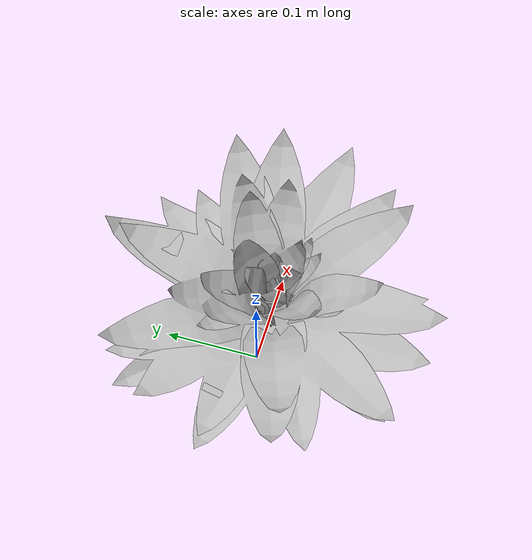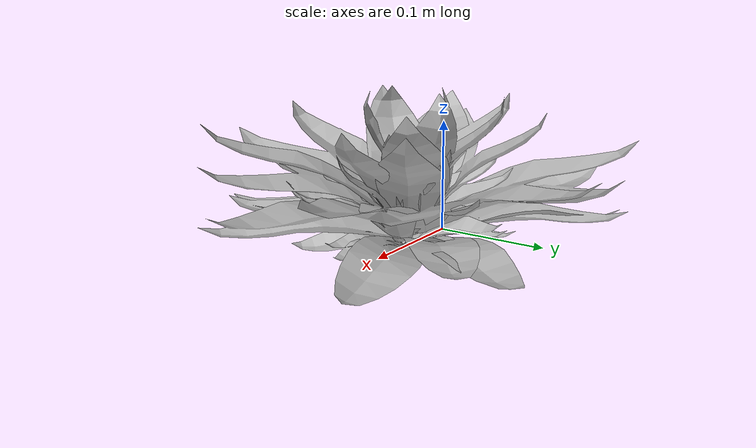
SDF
<?xml version="1.0" ?>
<sdf version="1.6">
  <model name="weed">
    <link name="link">
      <visual name="visual">
        <pose>0.05 0 0 0 0 -1</pose>
        <geometry>
          <mesh>
            <uri>model://weed/meshes/weed.dae</uri>
            <scale>0.2 0.2 0.14</scale>
          </mesh>
        </geometry>
        <material>
          <script>
            <uri>model://weed/materials/scripts/</uri>
            <uri>model://weed/materials/textures/</uri>
            <name>weed</name>
          </script>
        </material>
      </visual>
      <visual name="visual1">
        <pose>0.06 0 0 0 0 0</pose>
        <geometry>
          <mesh>
            <uri>model://weed/meshes/weed.dae</uri>
            <scale>0.1 0.1 0.1</scale>
          </mesh>
        </geometry>
        <material>
          <script>
            <uri>model://weed/materials/scripts/</uri>
            <uri>model://weed/materials/textures/</uri>
            <name>weed</name>
          </script>
        </material>
      </visual>
      <visual name="visual2">
        <pose>0.045 0 0 0 0 1</pose>
        <geometry>
          <mesh>
            <uri>model://weed/meshes/weed.dae</uri>
            <scale>0.2 0.2 0.14</scale>
          </mesh>
        </geometry>
        <material>
          <script>
            <uri>model://weed/materials/scripts/</uri>
            <uri>model://weed/materials/textures/</uri>
            <name>weed</name>
          </script>
        </material>
      </visual>
      <visual name="visual3">
        <pose>0.065 0 0 0 0 -2</pose>
        <geometry>
          <mesh>
            <uri>model://weed/meshes/weed.dae</uri>
            <scale>0.1 0.1 0.1</scale>
          </mesh>
        </geometry>
        <material>
          <script>
            <uri>model://weed/materials/scripts/</uri>
            <uri>model://weed/materials/textures/</uri>
            <name>weed</name>
          </script>
        </material>
      </visual>
      <collision name="collision">
        <pose>0 0 0.2 0 0 0</pose>
        <geometry>
          <box>
            <size>0.2 0.2 0.2</size>
          </box>
        </geometry>
      </collision>
    </link>
  </model>
</sdf>
